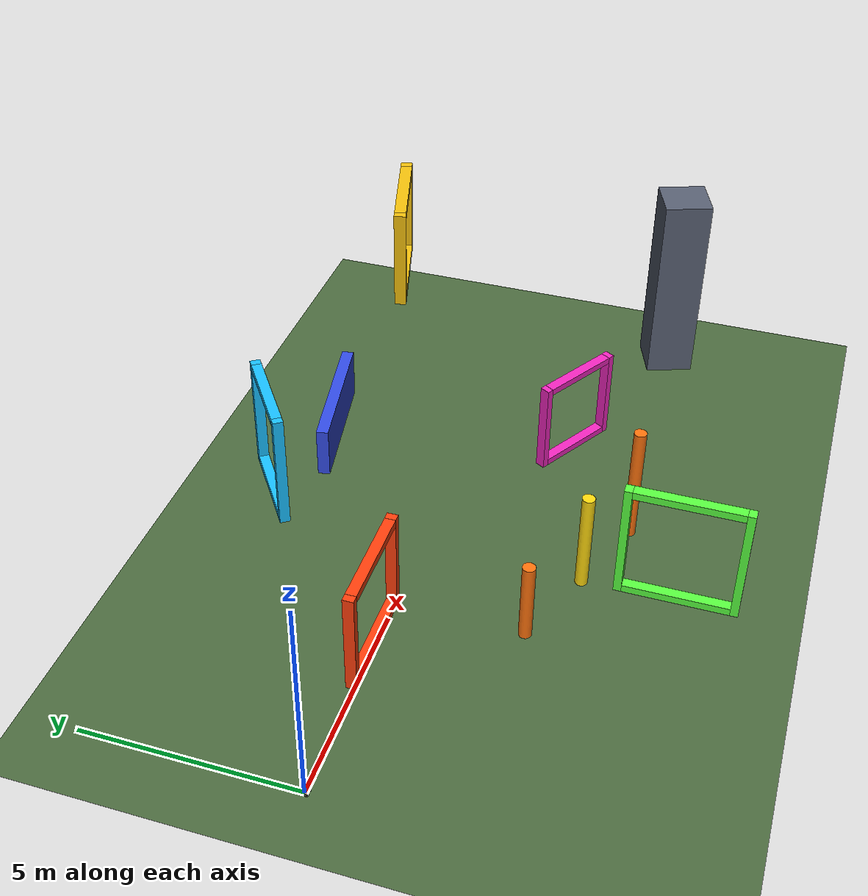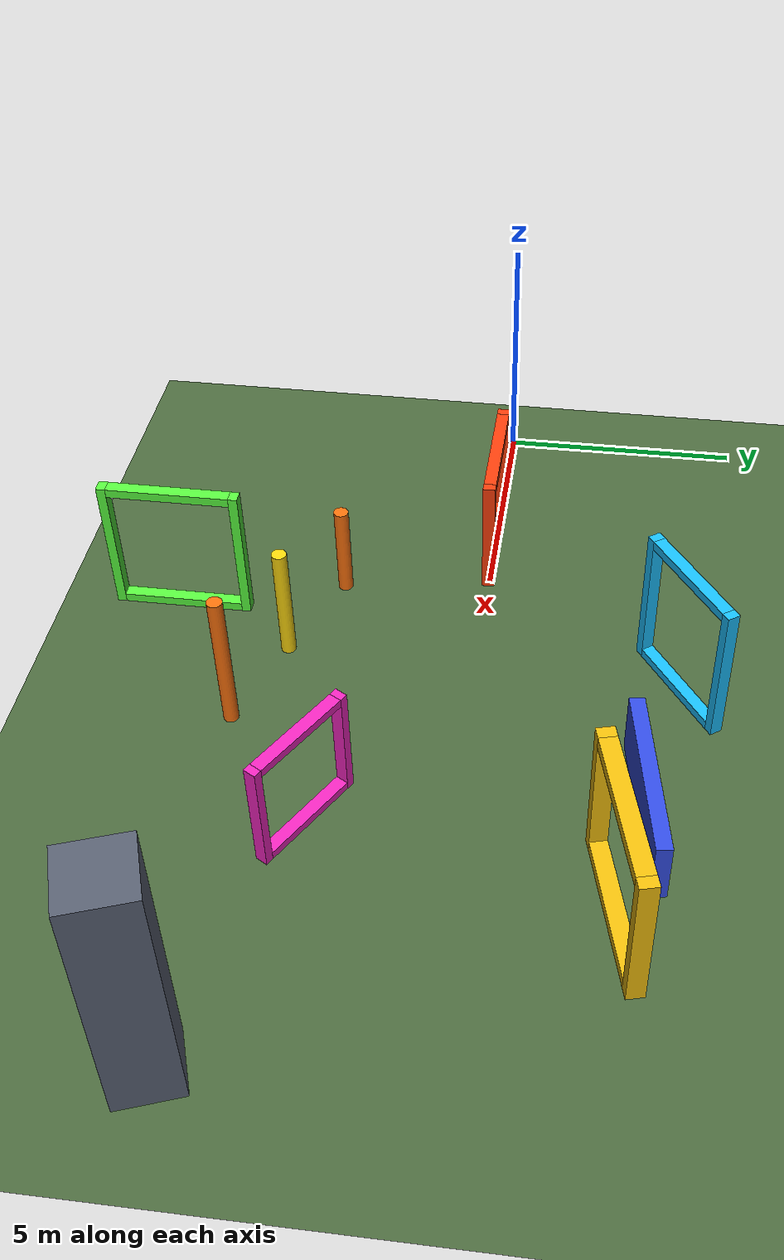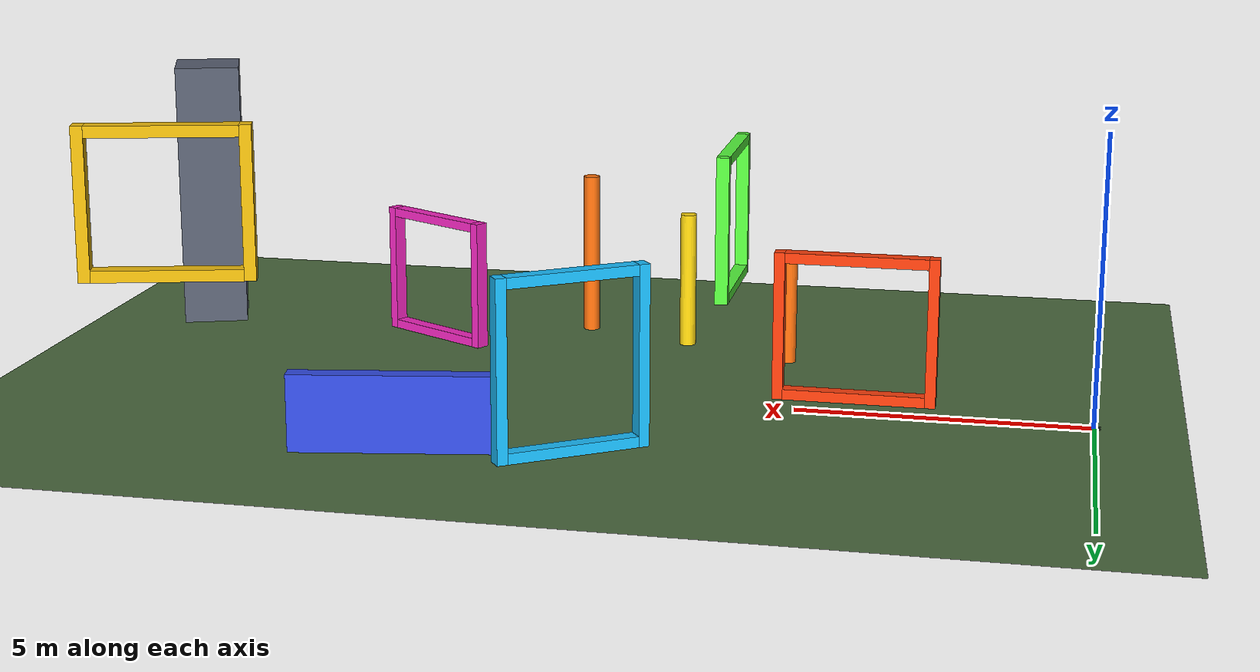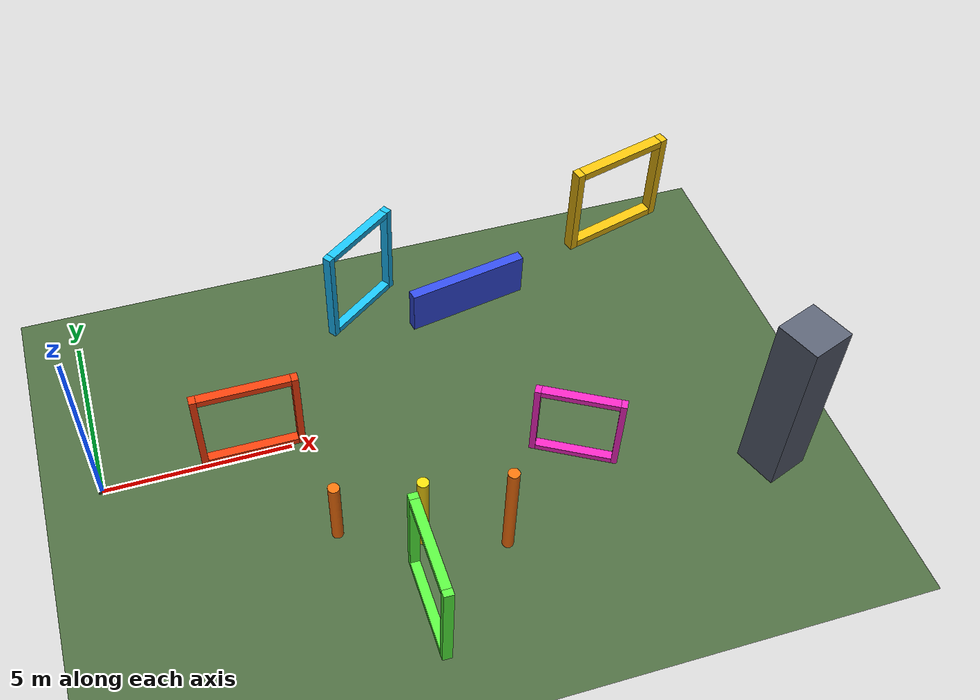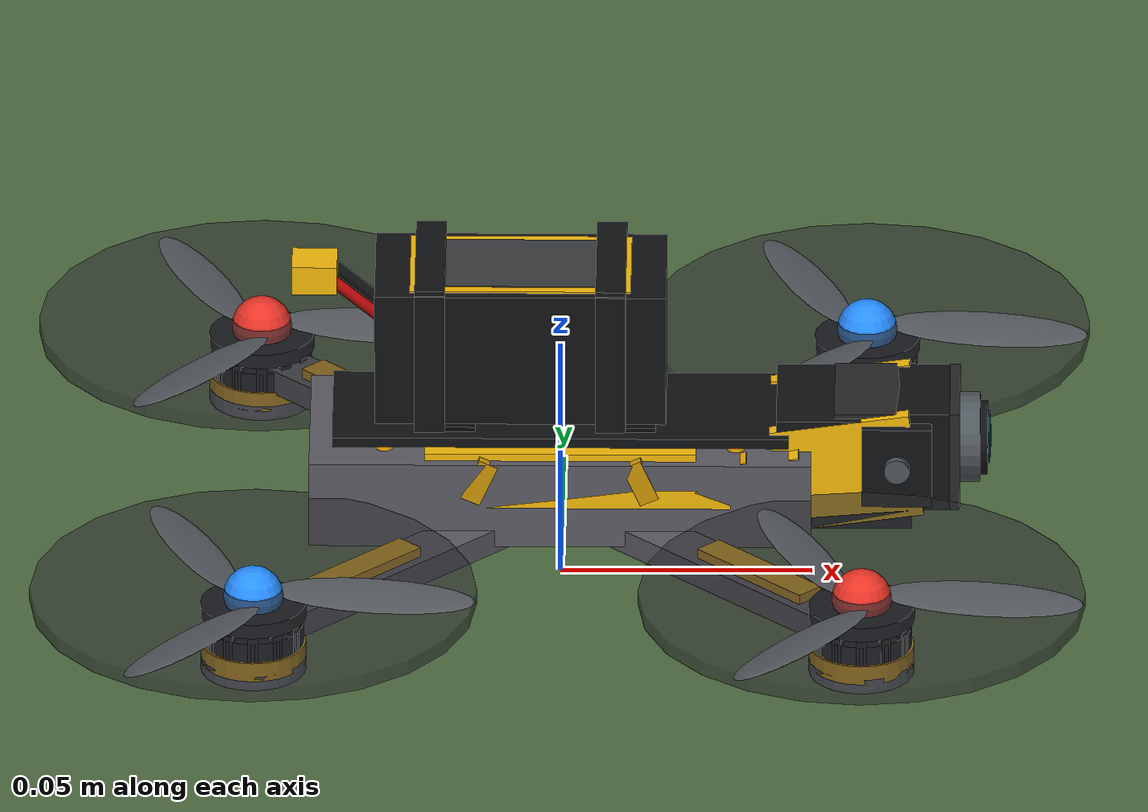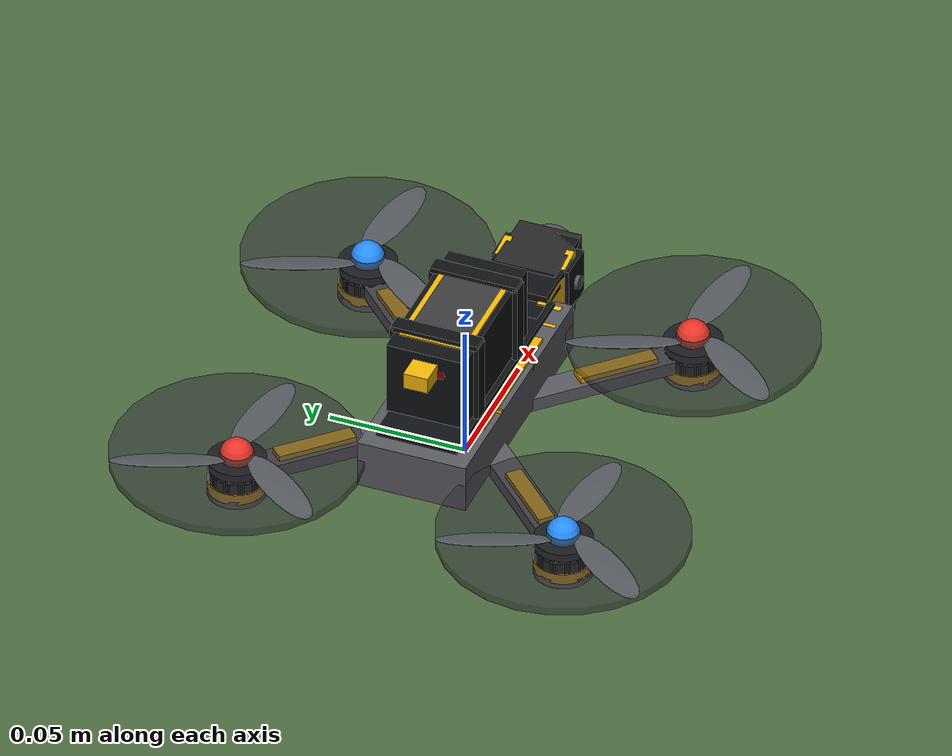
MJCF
<mujoco model="master3x-visual-demo">
  <compiler angle="degree" inertiafromgeom="true" inertiagrouprange="5 5" />
  <option timestep="0.001" density="1.204" viscosity="0.000018" integrator="RK4" />
  <visual>
    <global azimuth="135" elevation="-20" />
    <rgba haze="0.72 0.84 0.96 1" />
    <headlight ambient="0.55 0.55 0.55" diffuse="0.8 0.8 0.8" specular="0.25 0.25 0.25" />
  </visual>
  <asset>
    <texture name="fpv_sky" type="skybox" builtin="gradient" rgb1="0.62 0.78 0.95" rgb2="0.78 0.94 1" width="512" height="3072" />
  </asset>
  <worldbody>
    <light name="key-light" pos="0 -5 12" dir="0 0.25 -1" diffuse="0.95 0.95 0.92" ambient="0.25 0.25 0.25" directional="true" castshadow="true" />
    <light name="fill-light" pos="8 4 7" dir="-0.7 -0.3 -1" diffuse="0.55 0.65 0.8" ambient="0.12 0.12 0.16" directional="true" castshadow="true" />
    <geom name="ground" type="plane" size="30 30 0.1" rgba="0.3 0.42 0.25 1" friction="0.8 0.02 0.001" />
    <body name="course_start-gate" pos="4 0 1.5" euler="0 0 0">
      <geom contype="1" conaffinity="1" friction="0.15 0.002 0.0001" condim="3" rgba="1 0.25 0.05 1" name="start-gate_left" type="box" pos="-1.29 0 0" size="0.09 0.125 1.28" />
      <geom contype="1" conaffinity="1" friction="0.15 0.002 0.0001" condim="3" rgba="1 0.25 0.05 1" name="start-gate_right" type="box" pos="1.29 0 0" size="0.09 0.125 1.28" />
      <geom contype="1" conaffinity="1" friction="0.15 0.002 0.0001" condim="3" rgba="1 0.25 0.05 1" name="start-gate_top" type="box" pos="0 0 1.19" size="1.2 0.125 0.09" />
      <geom contype="1" conaffinity="1" friction="0.15 0.002 0.0001" condim="3" rgba="1 0.25 0.05 1" name="start-gate_bottom" type="box" pos="0 0 -1.19" size="1.2 0.125 0.09" />
    </body>
    <body name="course_gate-left" pos="8 4 1.8" euler="0 0 35">
      <geom contype="1" conaffinity="1" friction="0.15 0.002 0.0001" condim="3" rgba="0.1 0.75 1 1" name="gate-left_left" type="box" pos="-1.19 0 0" size="0.09 0.125 1.48" />
      <geom contype="1" conaffinity="1" friction="0.15 0.002 0.0001" condim="3" rgba="0.1 0.75 1 1" name="gate-left_right" type="box" pos="1.19 0 0" size="0.09 0.125 1.48" />
      <geom contype="1" conaffinity="1" friction="0.15 0.002 0.0001" condim="3" rgba="0.1 0.75 1 1" name="gate-left_top" type="box" pos="0 0 1.39" size="1.1 0.125 0.09" />
      <geom contype="1" conaffinity="1" friction="0.15 0.002 0.0001" condim="3" rgba="0.1 0.75 1 1" name="gate-left_bottom" type="box" pos="0 0 -1.39" size="1.1 0.125 0.09" />
    </body>
    <body name="course_gate-right" pos="12 -2.5 1.4" euler="0 0 -30">
      <geom contype="1" conaffinity="1" friction="0.15 0.002 0.0001" condim="3" rgba="0.95 0.15 0.75 1" name="gate-right_left" type="box" pos="-1.08 0 0" size="0.08 0.125 1.16" />
      <geom contype="1" conaffinity="1" friction="0.15 0.002 0.0001" condim="3" rgba="0.95 0.15 0.75 1" name="gate-right_right" type="box" pos="1.08 0 0" size="0.08 0.125 1.16" />
      <geom contype="1" conaffinity="1" friction="0.15 0.002 0.0001" condim="3" rgba="0.95 0.15 0.75 1" name="gate-right_top" type="box" pos="0 0 1.08" size="1 0.125 0.08" />
      <geom contype="1" conaffinity="1" friction="0.15 0.002 0.0001" condim="3" rgba="0.95 0.15 0.75 1" name="gate-right_bottom" type="box" pos="0 0 -1.08" size="1 0.125 0.08" />
    </body>
    <body name="course_high-gate" pos="15 3 3.8" euler="0 0 15">
      <geom contype="1" conaffinity="1" friction="0.15 0.002 0.0001" condim="3" rgba="0.95 0.75 0.05 1" name="high-gate_left" type="box" pos="-1.35 0 0" size="0.1 0.15 1.3" />
      <geom contype="1" conaffinity="1" friction="0.15 0.002 0.0001" condim="3" rgba="0.95 0.75 0.05 1" name="high-gate_right" type="box" pos="1.35 0 0" size="0.1 0.15 1.3" />
      <geom contype="1" conaffinity="1" friction="0.15 0.002 0.0001" condim="3" rgba="0.95 0.75 0.05 1" name="high-gate_top" type="box" pos="0 0 1.2" size="1.25 0.15 0.1" />
      <geom contype="1" conaffinity="1" friction="0.15 0.002 0.0001" condim="3" rgba="0.95 0.75 0.05 1" name="high-gate_bottom" type="box" pos="0 0 -1.2" size="1.25 0.15 0.1" />
    </body>
    <body name="course_return-gate" pos="7 -6 2" euler="0 0 90">
      <geom contype="1" conaffinity="1" friction="0.15 0.002 0.0001" condim="3" rgba="0.35 1 0.25 1" name="return-gate_left" type="box" pos="-1.29 0 0" size="0.09 0.125 1.43" />
      <geom contype="1" conaffinity="1" friction="0.15 0.002 0.0001" condim="3" rgba="0.35 1 0.25 1" name="return-gate_right" type="box" pos="1.29 0 0" size="0.09 0.125 1.43" />
      <geom contype="1" conaffinity="1" friction="0.15 0.002 0.0001" condim="3" rgba="0.35 1 0.25 1" name="return-gate_top" type="box" pos="0 0 1.34" size="1.2 0.125 0.09" />
      <geom contype="1" conaffinity="1" friction="0.15 0.002 0.0001" condim="3" rgba="0.35 1 0.25 1" name="return-gate_bottom" type="box" pos="0 0 -1.34" size="1.2 0.125 0.09" />
    </body>
    <body name="course_slalom-1" pos="5.5 -3 1" euler="0 0 0">
      <geom contype="1" conaffinity="1" friction="0.15 0.002 0.0001" condim="3" rgba="1 0.45 0.05 1" name="slalom-1_geom" type="cylinder" size="0.15 1" />
    </body>
    <body name="course_slalom-2" pos="7.5 -3.8 1.25" euler="0 0 0">
      <geom contype="1" conaffinity="1" friction="0.15 0.002 0.0001" condim="3" rgba="1 0.85 0.05 1" name="slalom-2_geom" type="cylinder" size="0.15 1.25" />
    </body>
    <body name="course_slalom-3" pos="9.5 -4.5 1.5" euler="0 0 0">
      <geom contype="1" conaffinity="1" friction="0.15 0.002 0.0001" condim="3" rgba="1 0.45 0.05 1" name="slalom-3_geom" type="cylinder" size="0.15 1.5" />
    </body>
    <body name="course_low-bar" pos="11 3.5 0.65" euler="0 0 10">
      <geom contype="1" conaffinity="1" friction="0.15 0.002 0.0001" condim="3" rgba="0.2 0.3 0.9 1" name="low-bar_geom" type="box" size="1.75 0.15 0.65" />
    </body>
    <body name="course_tower" pos="17 -4 2.5" euler="0 0 20">
      <geom contype="1" conaffinity="1" friction="0.15 0.002 0.0001" condim="3" rgba="0.35 0.38 0.45 1" name="tower_geom" type="box" size="0.6 0.6 2.5" />
    </body>
    <body name="drone_base" pos="0 0 0.016">
      <freejoint name="drone_freejoint" />
      <geom name="frame_bottom_plate" type="box" pos="0 0 0" quat="1 0 0 0" size="0.049 0.018 0.001" rgba="0.055 0.065 0.075 1" mass="0" group="1" contype="0" conaffinity="0" />
      <geom name="frame_middle_plate" type="box" pos="0 0 0.0065" quat="1 0 0 0" size="0.043 0.017 0.001" rgba="0.06 0.07 0.08 1" mass="0" group="1" contype="0" conaffinity="0" />
      <geom name="frame_top_plate" type="box" pos="0 0 0.0195" quat="1 0 0 0" size="0.0455 0.015 0.001" rgba="0.055 0.065 0.075 1" mass="0" group="1" contype="0" conaffinity="0" />
      <geom name="frame_top_nose" type="box" pos="0.045 0 0.0195" quat="1 0 0 0" size="0.011 0.013 0.001" rgba="0.055 0.065 0.075 1" mass="0" group="1" contype="0" conaffinity="0" />
      <geom name="frame_battery_pad_front" type="box" pos="0.013 0 0.021" quat="1 0 0 0" size="0.006 0.012 0.0005" rgba="0.025 0.028 0.032 1" mass="0" group="1" contype="0" conaffinity="0" />
      <geom name="frame_battery_pad_rear" type="box" pos="-0.023 0 0.021" quat="1 0 0 0" size="0.006 0.012 0.0005" rgba="0.025 0.028 0.032 1" mass="0" group="1" contype="0" conaffinity="0" />
      <geom name="frame_front_support_bottom" type="box" pos="0.055 0 0.002" quat="1 0 0 0" size="0.015 0.013 0.002" rgba="0.055 0.065 0.075 1" mass="0" group="1" contype="0" conaffinity="0" />
      <geom name="frame_front_support_right" type="box" pos="0.057 -0.0115 0.012" quat="0.99756405026 0 -0.0697564737441 0" size="0.014 0.0015 0.011" rgba="0.95 0.72 0.03 1" mass="0" group="1" contype="0" conaffinity="0" />
      <geom name="frame_front_support_left" type="box" pos="0.057 0.0115 0.012" quat="0.99756405026 0 -0.0697564737441 0" size="0.014 0.0015 0.011" rgba="0.95 0.72 0.03 1" mass="0" group="1" contype="0" conaffinity="0" />
      <geom name="frame_front_support_top" type="box" pos="0.055 0 0.022" quat="1 0 0 0" size="0.012 0.013 0.0015" rgba="0.055 0.065 0.075 1" mass="0" group="1" contype="0" conaffinity="0" />
      <geom name="frame_side_plate_right" type="box" pos="0 -0.017 0.0095" quat="1 0 0 0" size="0.034 0.003 0.002" rgba="0.95 0.72 0.03 1" mass="0" group="1" contype="0" conaffinity="0" />
      <geom name="frame_side_plate_left" type="box" pos="0 0.017 0.0095" quat="1 0 0 0" size="0.034 0.003 0.002" rgba="0.95 0.72 0.03 1" mass="0" group="1" contype="0" conaffinity="0" />
      <geom name="frame_side_plate_mid_right" type="box" pos="0 -0.0165 0.013" quat="1 0 0 0" size="0.031 0.0025 0.0015" rgba="0.97 0.73 0.035 1" mass="0" group="1" contype="0" conaffinity="0" />
      <geom name="frame_side_plate_mid_left" type="box" pos="0 0.0165 0.013" quat="1 0 0 0" size="0.031 0.0025 0.0015" rgba="0.97 0.73 0.035 1" mass="0" group="1" contype="0" conaffinity="0" />
      <geom name="frame_side_plate_upper_right" type="box" pos="0 -0.016 0.0165" quat="1 0 0 0" size="0.027 0.002 0.002" rgba="0.95 0.72 0.03 1" mass="0" group="1" contype="0" conaffinity="0" />
      <geom name="frame_side_plate_upper_left" type="box" pos="0 0.016 0.0165" quat="1 0 0 0" size="0.027 0.002 0.002" rgba="0.95 0.72 0.03 1" mass="0" group="1" contype="0" conaffinity="0" />
      <geom name="frame_side_front_ramp_right" type="box" pos="0.03 -0.0165 0.013" quat="0.987688340595 0 -0.15643446504 0" size="0.008 0.0025 0.002" rgba="0.92 0.66 0.02 1" mass="0" group="1" contype="0" conaffinity="0" />
      <geom name="frame_side_front_ramp_left" type="box" pos="0.03 0.0165 0.013" quat="0.987688340595 0 -0.15643446504 0" size="0.008 0.0025 0.002" rgba="0.92 0.66 0.02 1" mass="0" group="1" contype="0" conaffinity="0" />
      <geom name="frame_side_rear_ramp_right" type="box" pos="-0.03 -0.0165 0.0125" quat="0.987688340595 0 0.15643446504 0" size="0.008 0.0025 0.002" rgba="0.92 0.66 0.02 1" mass="0" group="1" contype="0" conaffinity="0" />
      <geom name="frame_side_rear_ramp_left" type="box" pos="-0.03 0.0165 0.0125" quat="0.987688340595 0 0.15643446504 0" size="0.008 0.0025 0.002" rgba="0.92 0.66 0.02 1" mass="0" group="1" contype="0" conaffinity="0" />
      <geom name="frame_side_nose_bridge_right" type="box" pos="0.041 -0.0145 0.014" quat="0.994521895368 0 -0.104528463268 0" size="0.007 0.0025 0.002" rgba="0.95 0.72 0.03 1" mass="0" group="1" contype="0" conaffinity="0" />
      <geom name="frame_side_nose_bridge_left" type="box" pos="0.041 0.0145 0.014" quat="0.994521895368 0 -0.104528463268 0" size="0.007 0.0025 0.002" rgba="0.95 0.72 0.03 1" mass="0" group="1" contype="0" conaffinity="0" />
      <geom name="frame_side_brace_right_front" type="box" pos="0.016 -0.0185 0.013" quat="0.978147600734 0 -0.207911690818 0" size="0.002 0.0015 0.0045" rgba="0.8 0.58 0.02 1" mass="0" group="1" contype="0" conaffinity="0" />
      <geom name="frame_side_brace_right_rear" type="box" pos="-0.016 -0.0185 0.013" quat="0.978147600734 0 0.207911690818 0" size="0.002 0.0015 0.0045" rgba="0.8 0.58 0.02 1" mass="0" group="1" contype="0" conaffinity="0" />
      <geom name="frame_side_brace_left_front" type="box" pos="0.016 0.0185 0.013" quat="0.978147600734 0 -0.207911690818 0" size="0.002 0.0015 0.0045" rgba="0.8 0.58 0.02 1" mass="0" group="1" contype="0" conaffinity="0" />
      <geom name="frame_side_brace_left_rear" type="box" pos="-0.016 0.0185 0.013" quat="0.978147600734 0 0.207911690818 0" size="0.002 0.0015 0.0045" rgba="0.8 0.58 0.02 1" mass="0" group="1" contype="0" conaffinity="0" />
      <geom name="frame_standoff_rear_right" type="cylinder" pos="-0.035 -0.012 0.013" quat="1 0 0 0" size="0.0018 0.0055" rgba="0.95 0.67 0.025 1" mass="0" group="1" contype="0" conaffinity="0" />
      <geom name="frame_standoff_rear_left" type="cylinder" pos="-0.035 0.012 0.013" quat="1 0 0 0" size="0.0018 0.0055" rgba="0.95 0.67 0.025 1" mass="0" group="1" contype="0" conaffinity="0" />
      <geom name="frame_standoff_front_right" type="cylinder" pos="0.035 -0.012 0.013" quat="1 0 0 0" size="0.0018 0.0055" rgba="0.95 0.67 0.025 1" mass="0" group="1" contype="0" conaffinity="0" />
      <geom name="frame_standoff_front_left" type="cylinder" pos="0.035 0.012 0.013" quat="1 0 0 0" size="0.0018 0.0055" rgba="0.95 0.67 0.025 1" mass="0" group="1" contype="0" conaffinity="0" />
      <geom name="frame_arm_front_right" type="box" pos="0.037 -0.037 0" quat="0.923879532511 0 0 -0.382683432365" size="0.0332 0.0045 0.002" rgba="0.08 0.09 0.1 1" mass="0" group="1" contype="0" conaffinity="0" />
      <geom name="frame_arm_front_left" type="box" pos="0.037 0.037 0" quat="0.923879532511 0 0 0.382683432365" size="0.0332 0.0045 0.002" rgba="0.08 0.09 0.1 1" mass="0" group="1" contype="0" conaffinity="0" />
      <geom name="frame_arm_rear_left" type="box" pos="-0.037 0.037 0" quat="0.923879532511 0 0 -0.382683432365" size="0.0332 0.0045 0.002" rgba="0.08 0.09 0.1 1" mass="0" group="1" contype="0" conaffinity="0" />
      <geom name="frame_arm_rear_right" type="box" pos="-0.037 -0.037 0" quat="0.923879532511 0 0 0.382683432365" size="0.0332 0.0045 0.002" rgba="0.08 0.09 0.1 1" mass="0" group="1" contype="0" conaffinity="0" />
      <geom name="frame_foot_rear_right" type="cylinder" pos="-0.06046 -0.06046 -0.004" quat="1 0 0 0" size="0.0105 0.002" rgba="0.95 0.67 0.025 1" mass="0" group="1" contype="0" conaffinity="0" />
      <geom name="frame_motor_pad_rear_right" type="cylinder" pos="-0.06046 -0.06046 0" quat="1 0 0 0" size="0.01 0.002" rgba="0.055 0.065 0.075 1" mass="0" group="1" contype="0" conaffinity="0" />
      <geom name="frame_wire_guard_rear_right" type="box" pos="-0.0399 -0.0399 0.003" quat="0.923879532511 0 0 0.382683432365" size="0.0145 0.003 0.0015" rgba="0.95 0.67 0.025 1" mass="0" group="1" contype="0" conaffinity="0" />
      <geom name="frame_foot_rear_left" type="cylinder" pos="-0.06046 0.06046 -0.004" quat="1 0 0 0" size="0.0105 0.002" rgba="0.95 0.67 0.025 1" mass="0" group="1" contype="0" conaffinity="0" />
      <geom name="frame_motor_pad_rear_left" type="cylinder" pos="-0.06046 0.06046 0" quat="1 0 0 0" size="0.01 0.002" rgba="0.055 0.065 0.075 1" mass="0" group="1" contype="0" conaffinity="0" />
      <geom name="frame_wire_guard_rear_left" type="box" pos="-0.0399 0.0399 0.003" quat="0.923879532511 0 0 -0.382683432365" size="0.0145 0.003 0.0015" rgba="0.95 0.67 0.025 1" mass="0" group="1" contype="0" conaffinity="0" />
      <geom name="frame_foot_front_right" type="cylinder" pos="0.06046 -0.06046 -0.004" quat="1 0 0 0" size="0.0105 0.002" rgba="0.95 0.67 0.025 1" mass="0" group="1" contype="0" conaffinity="0" />
      <geom name="frame_motor_pad_front_right" type="cylinder" pos="0.06046 -0.06046 0" quat="1 0 0 0" size="0.01 0.002" rgba="0.055 0.065 0.075 1" mass="0" group="1" contype="0" conaffinity="0" />
      <geom name="frame_wire_guard_front_right" type="box" pos="0.0399 -0.0399 0.003" quat="0.923879532511 0 0 -0.382683432365" size="0.0145 0.003 0.0015" rgba="0.95 0.67 0.025 1" mass="0" group="1" contype="0" conaffinity="0" />
      <geom name="frame_foot_front_left" type="cylinder" pos="0.06046 0.06046 -0.004" quat="1 0 0 0" size="0.0105 0.002" rgba="0.95 0.67 0.025 1" mass="0" group="1" contype="0" conaffinity="0" />
      <geom name="frame_motor_pad_front_left" type="cylinder" pos="0.06046 0.06046 0" quat="1 0 0 0" size="0.01 0.002" rgba="0.055 0.065 0.075 1" mass="0" group="1" contype="0" conaffinity="0" />
      <geom name="frame_wire_guard_front_left" type="box" pos="0.0399 0.0399 0.003" quat="0.923879532511 0 0 0.382683432365" size="0.0145 0.003 0.0015" rgba="0.95 0.67 0.025 1" mass="0" group="1" contype="0" conaffinity="0" />
      <geom name="frame_core_contact" type="box" pos="0 0 0.008" quat="1 0 0 0" size="0.05 0.02 0.009" rgba="0.35 0.35 0.38 1" mass="0" group="2" contype="1" conaffinity="1" friction="0.15 0.002 0.0001" />
      <geom name="frame_arm_front_right_contact" type="box" pos="0.037 -0.037 0" quat="0.923879532511 0 0 -0.382683432365" size="0.0332 0.005 0.0025" rgba="0.35 0.35 0.38 1" mass="0" group="2" contype="1" conaffinity="1" friction="0.15 0.002 0.0001" />
      <geom name="frame_arm_front_left_contact" type="box" pos="0.037 0.037 0" quat="0.923879532511 0 0 0.382683432365" size="0.0332 0.005 0.0025" rgba="0.35 0.35 0.38 1" mass="0" group="2" contype="1" conaffinity="1" friction="0.15 0.002 0.0001" />
      <geom name="frame_arm_rear_left_contact" type="box" pos="-0.037 0.037 0" quat="0.923879532511 0 0 -0.382683432365" size="0.0332 0.005 0.0025" rgba="0.35 0.35 0.38 1" mass="0" group="2" contype="1" conaffinity="1" friction="0.15 0.002 0.0001" />
      <geom name="frame_arm_rear_right_contact" type="box" pos="-0.037 -0.037 0" quat="0.923879532511 0 0 0.382683432365" size="0.0332 0.005 0.0025" rgba="0.35 0.35 0.38 1" mass="0" group="2" contype="1" conaffinity="1" friction="0.15 0.002 0.0001" />
      <geom name="frame_foot_front_right_contact" type="cylinder" pos="0.06046 -0.06046 -0.004" quat="1 0 0 0" size="0.0105 0.002" rgba="0.35 0.35 0.38 1" mass="0" group="2" contype="1" conaffinity="1" friction="0.15 0.002 0.0001" />
      <geom name="frame_foot_front_left_contact" type="cylinder" pos="0.06046 0.06046 -0.004" quat="1 0 0 0" size="0.0105 0.002" rgba="0.35 0.35 0.38 1" mass="0" group="2" contype="1" conaffinity="1" friction="0.15 0.002 0.0001" />
      <geom name="frame_foot_rear_left_contact" type="cylinder" pos="-0.06046 0.06046 -0.004" quat="1 0 0 0" size="0.0105 0.002" rgba="0.35 0.35 0.38 1" mass="0" group="2" contype="1" conaffinity="1" friction="0.15 0.002 0.0001" />
      <geom name="frame_foot_rear_right_contact" type="cylinder" pos="-0.06046 -0.06046 -0.004" quat="1 0 0 0" size="0.0105 0.002" rgba="0.35 0.35 0.38 1" mass="0" group="2" contype="1" conaffinity="1" friction="0.15 0.002 0.0001" />
      <geom name="frame_mass_proxy" type="box" pos="0 0 0" quat="1 0 0 0" size="0.06 0.06 0.009" rgba="0 0 0 0" density="335.648148148" group="5" contype="0" conaffinity="0" />
      <geom name="motor_prop1_base_flange" type="cylinder" pos="0.06046 -0.06046 -0.0065" quat="1 0 0 0" size="0.0105 0.0015" rgba="0.38 0.4 0.43 1" mass="0" group="1" contype="0" conaffinity="0" />
      <geom name="motor_prop1_stator" type="cylinder" pos="0.06046 -0.06046 0" quat="1 0 0 0" size="0.0075 0.0035" rgba="0.52 0.24 0.075 1" mass="0" group="1" contype="0" conaffinity="0" />
      <geom name="motor_prop1_bell_rim" type="cylinder" pos="0.06046 -0.06046 0.005" quat="1 0 0 0" size="0.0105 0.0015" rgba="0.055 0.065 0.075 1" mass="0" group="1" contype="0" conaffinity="0" />
      <geom name="motor_prop1_shaft" type="cylinder" pos="0.06046 -0.06046 0.008" quat="1 0 0 0" size="0.00075 0.002" rgba="0.38 0.4 0.43 1" mass="0" group="1" contype="0" conaffinity="0" />
      <geom name="motor_prop1_bell_rib_0" type="box" pos="0.06976 -0.06046 0" quat="1 0 0 0" size="0.00065 0.00105 0.0045" rgba="0.055 0.065 0.075 1" mass="0" group="1" contype="0" conaffinity="0" />
      <geom name="motor_prop1_bell_rib_1" type="box" pos="0.068514 -0.05581 0" quat="0.965925826289 0 0 0.258819045103" size="0.00065 0.00105 0.0045" rgba="0.055 0.065 0.075 1" mass="0" group="1" contype="0" conaffinity="0" />
      <geom name="motor_prop1_bell_rib_2" type="box" pos="0.06511 -0.052406 0" quat="0.866025403784 0 0 0.5" size="0.00065 0.00105 0.0045" rgba="0.055 0.065 0.075 1" mass="0" group="1" contype="0" conaffinity="0" />
      <geom name="motor_prop1_bell_rib_3" type="box" pos="0.06046 -0.05116 0" quat="0.707106781187 0 0 0.707106781187" size="0.00065 0.00105 0.0045" rgba="0.055 0.065 0.075 1" mass="0" group="1" contype="0" conaffinity="0" />
      <geom name="motor_prop1_bell_rib_4" type="box" pos="0.05581 -0.052406 0" quat="0.5 0 0 0.866025403784" size="0.00065 0.00105 0.0045" rgba="0.055 0.065 0.075 1" mass="0" group="1" contype="0" conaffinity="0" />
      <geom name="motor_prop1_bell_rib_5" type="box" pos="0.052406 -0.05581 0" quat="0.258819045103 0 0 0.965925826289" size="0.00065 0.00105 0.0045" rgba="0.055 0.065 0.075 1" mass="0" group="1" contype="0" conaffinity="0" />
      <geom name="motor_prop1_bell_rib_6" type="box" pos="0.05116 -0.06046 0" quat="6.12323399574e-17 0 0 1" size="0.00065 0.00105 0.0045" rgba="0.055 0.065 0.075 1" mass="0" group="1" contype="0" conaffinity="0" />
      <geom name="motor_prop1_bell_rib_7" type="box" pos="0.052406 -0.06511 0" quat="-0.258819045103 0 0 0.965925826289" size="0.00065 0.00105 0.0045" rgba="0.055 0.065 0.075 1" mass="0" group="1" contype="0" conaffinity="0" />
      <geom name="motor_prop1_bell_rib_8" type="box" pos="0.05581 -0.068514 0" quat="-0.5 0 0 0.866025403784" size="0.00065 0.00105 0.0045" rgba="0.055 0.065 0.075 1" mass="0" group="1" contype="0" conaffinity="0" />
      <geom name="motor_prop1_bell_rib_9" type="box" pos="0.06046 -0.06976 0" quat="-0.707106781187 0 0 0.707106781187" size="0.00065 0.00105 0.0045" rgba="0.055 0.065 0.075 1" mass="0" group="1" contype="0" conaffinity="0" />
      <geom name="motor_prop1_bell_rib_10" type="box" pos="0.06511 -0.068514 0" quat="-0.866025403784 0 0 0.5" size="0.00065 0.00105 0.0045" rgba="0.055 0.065 0.075 1" mass="0" group="1" contype="0" conaffinity="0" />
      <geom name="motor_prop1_bell_rib_11" type="box" pos="0.068514 -0.06511 0" quat="-0.965925826289 0 0 0.258819045103" size="0.00065 0.00105 0.0045" rgba="0.055 0.065 0.075 1" mass="0" group="1" contype="0" conaffinity="0" />
      <geom name="motor_prop1_mass_proxy" type="cylinder" pos="0.06046 -0.06046 0" quat="1 0 0 0" size="0.011 0.008" rgba="0 0 0 0" density="2499.12720558" group="5" contype="0" conaffinity="0" />
      <geom name="propeller_prop1_hub" type="cylinder" pos="0.06046 -0.06046 0.008" quat="1 0 0 0" size="0.005 0.00235" rgba="0.21 0.23 0.25 1" mass="0" group="1" contype="0" conaffinity="0" />
      <geom name="propeller_prop1_blade_1" type="ellipsoid" pos="0.08446 -0.06046 0.008" quat="0.992099290016 0.104273837185 -0.00729153700344 -0.0693743404822" size="0.02045 0.0055 0.0007" rgba="0.56 0.6 0.62 1" mass="0" group="1" contype="0" conaffinity="0" />
      <geom name="propeller_prop1_blade_2" type="ellipsoid" pos="0.04846 -0.039675 0.008" quat="0.556129586236 0.05845157487 0.0866580234503 0.824496017989" size="0.02045 0.0055 0.0007" rgba="0.56 0.6 0.62 1" mass="0" group="1" contype="0" conaffinity="0" />
      <geom name="propeller_prop1_blade_3" type="ellipsoid" pos="0.04846 -0.081245 0.008" quat="-0.435969703779 -0.0458222623147 0.0939495604538 0.893870358471" size="0.02045 0.0055 0.0007" rgba="0.56 0.6 0.62 1" mass="0" group="1" contype="0" conaffinity="0" />
      <geom name="propeller_prop1_screw_1" type="cylinder" pos="0.06346 -0.06046 0.0106" quat="1 0 0 0" size="0.001 0.00035" rgba="0.65 0.67 0.69 1" mass="0" group="1" contype="0" conaffinity="0" />
      <geom name="propeller_prop1_screw_2" type="cylinder" pos="0.05746 -0.06046 0.0106" quat="1 0 0 0" size="0.001 0.00035" rgba="0.65 0.67 0.69 1" mass="0" group="1" contype="0" conaffinity="0" />
      <geom name="propeller_prop1_mass_proxy" type="cylinder" pos="0.06046 -0.06046 0.008" quat="1 0 0 0" size="0.04445 0.0015" rgba="0 0 0 0" density="83.2371190246" group="5" contype="0" conaffinity="0" />
      <geom name="motor_prop2_base_flange" type="cylinder" pos="0.06046 0.06046 -0.0065" quat="1 0 0 0" size="0.0105 0.0015" rgba="0.38 0.4 0.43 1" mass="0" group="1" contype="0" conaffinity="0" />
      <geom name="motor_prop2_stator" type="cylinder" pos="0.06046 0.06046 0" quat="1 0 0 0" size="0.0075 0.0035" rgba="0.52 0.24 0.075 1" mass="0" group="1" contype="0" conaffinity="0" />
      <geom name="motor_prop2_bell_rim" type="cylinder" pos="0.06046 0.06046 0.005" quat="1 0 0 0" size="0.0105 0.0015" rgba="0.055 0.065 0.075 1" mass="0" group="1" contype="0" conaffinity="0" />
      <geom name="motor_prop2_shaft" type="cylinder" pos="0.06046 0.06046 0.008" quat="1 0 0 0" size="0.00075 0.002" rgba="0.38 0.4 0.43 1" mass="0" group="1" contype="0" conaffinity="0" />
      <geom name="motor_prop2_bell_rib_0" type="box" pos="0.06976 0.06046 0" quat="1 0 0 0" size="0.00065 0.00105 0.0045" rgba="0.055 0.065 0.075 1" mass="0" group="1" contype="0" conaffinity="0" />
      <geom name="motor_prop2_bell_rib_1" type="box" pos="0.068514 0.06511 0" quat="0.965925826289 0 0 0.258819045103" size="0.00065 0.00105 0.0045" rgba="0.055 0.065 0.075 1" mass="0" group="1" contype="0" conaffinity="0" />
      <geom name="motor_prop2_bell_rib_2" type="box" pos="0.06511 0.068514 0" quat="0.866025403784 0 0 0.5" size="0.00065 0.00105 0.0045" rgba="0.055 0.065 0.075 1" mass="0" group="1" contype="0" conaffinity="0" />
      <geom name="motor_prop2_bell_rib_3" type="box" pos="0.06046 0.06976 0" quat="0.707106781187 0 0 0.707106781187" size="0.00065 0.00105 0.0045" rgba="0.055 0.065 0.075 1" mass="0" group="1" contype="0" conaffinity="0" />
      <geom name="motor_prop2_bell_rib_4" type="box" pos="0.05581 0.068514 0" quat="0.5 0 0 0.866025403784" size="0.00065 0.00105 0.0045" rgba="0.055 0.065 0.075 1" mass="0" group="1" contype="0" conaffinity="0" />
      <geom name="motor_prop2_bell_rib_5" type="box" pos="0.052406 0.06511 0" quat="0.258819045103 0 0 0.965925826289" size="0.00065 0.00105 0.0045" rgba="0.055 0.065 0.075 1" mass="0" group="1" contype="0" conaffinity="0" />
      <geom name="motor_prop2_bell_rib_6" type="box" pos="0.05116 0.06046 0" quat="6.12323399574e-17 0 0 1" size="0.00065 0.00105 0.0045" rgba="0.055 0.065 0.075 1" mass="0" group="1" contype="0" conaffinity="0" />
      <geom name="motor_prop2_bell_rib_7" type="box" pos="0.052406 0.05581 0" quat="-0.258819045103 0 0 0.965925826289" size="0.00065 0.00105 0.0045" rgba="0.055 0.065 0.075 1" mass="0" group="1" contype="0" conaffinity="0" />
      <geom name="motor_prop2_bell_rib_8" type="box" pos="0.05581 0.052406 0" quat="-0.5 0 0 0.866025403784" size="0.00065 0.00105 0.0045" rgba="0.055 0.065 0.075 1" mass="0" group="1" contype="0" conaffinity="0" />
      <geom name="motor_prop2_bell_rib_9" type="box" pos="0.06046 0.05116 0" quat="-0.707106781187 0 0 0.707106781187" size="0.00065 0.00105 0.0045" rgba="0.055 0.065 0.075 1" mass="0" group="1" contype="0" conaffinity="0" />
      <geom name="motor_prop2_bell_rib_10" type="box" pos="0.06511 0.052406 0" quat="-0.866025403784 0 0 0.5" size="0.00065 0.00105 0.0045" rgba="0.055 0.065 0.075 1" mass="0" group="1" contype="0" conaffinity="0" />
      <geom name="motor_prop2_bell_rib_11" type="box" pos="0.068514 0.05581 0" quat="-0.965925826289 0 0 0.258819045103" size="0.00065 0.00105 0.0045" rgba="0.055 0.065 0.075 1" mass="0" group="1" contype="0" conaffinity="0" />
      <geom name="motor_prop2_mass_proxy" type="cylinder" pos="0.06046 0.06046 0" quat="1 0 0 0" size="0.011 0.008" rgba="0 0 0 0" density="2499.12720558" group="5" contype="0" conaffinity="0" />
      <geom name="propeller_prop2_hub" type="cylinder" pos="0.06046 0.06046 0.008" quat="1 0 0 0" size="0.005 0.00235" rgba="0.21 0.23 0.25 1" mass="0" group="1" contype="0" conaffinity="0" />
      <geom name="propeller_prop2_blade_1" type="ellipsoid" pos="0.08446 0.06046 0.008" quat="0.992099290016 0.104273837185 -0.00729153700344 -0.0693743404822" size="0.02045 0.0055 0.0007" rgba="0.56 0.6 0.62 1" mass="0" group="1" contype="0" conaffinity="0" />
      <geom name="propeller_prop2_blade_2" type="ellipsoid" pos="0.04846 0.081245 0.008" quat="0.556129586236 0.05845157487 0.0866580234503 0.824496017989" size="0.02045 0.0055 0.0007" rgba="0.56 0.6 0.62 1" mass="0" group="1" contype="0" conaffinity="0" />
      <geom name="propeller_prop2_blade_3" type="ellipsoid" pos="0.04846 0.039675 0.008" quat="-0.435969703779 -0.0458222623147 0.0939495604538 0.893870358471" size="0.02045 0.0055 0.0007" rgba="0.56 0.6 0.62 1" mass="0" group="1" contype="0" conaffinity="0" />
      <geom name="propeller_prop2_screw_1" type="cylinder" pos="0.06346 0.06046 0.0106" quat="1 0 0 0" size="0.001 0.00035" rgba="0.65 0.67 0.69 1" mass="0" group="1" contype="0" conaffinity="0" />
      <geom name="propeller_prop2_screw_2" type="cylinder" pos="0.05746 0.06046 0.0106" quat="1 0 0 0" size="0.001 0.00035" rgba="0.65 0.67 0.69 1" mass="0" group="1" contype="0" conaffinity="0" />
      <geom name="propeller_prop2_mass_proxy" type="cylinder" pos="0.06046 0.06046 0.008" quat="1 0 0 0" size="0.04445 0.0015" rgba="0 0 0 0" density="83.2371190246" group="5" contype="0" conaffinity="0" />
      <geom name="motor_prop3_base_flange" type="cylinder" pos="-0.06046 0.06046 -0.0065" quat="1 0 0 0" size="0.0105 0.0015" rgba="0.38 0.4 0.43 1" mass="0" group="1" contype="0" conaffinity="0" />
      <geom name="motor_prop3_stator" type="cylinder" pos="-0.06046 0.06046 0" quat="1 0 0 0" size="0.0075 0.0035" rgba="0.52 0.24 0.075 1" mass="0" group="1" contype="0" conaffinity="0" />
      <geom name="motor_prop3_bell_rim" type="cylinder" pos="-0.06046 0.06046 0.005" quat="1 0 0 0" size="0.0105 0.0015" rgba="0.055 0.065 0.075 1" mass="0" group="1" contype="0" conaffinity="0" />
      <geom name="motor_prop3_shaft" type="cylinder" pos="-0.06046 0.06046 0.008" quat="1 0 0 0" size="0.00075 0.002" rgba="0.38 0.4 0.43 1" mass="0" group="1" contype="0" conaffinity="0" />
      <geom name="motor_prop3_bell_rib_0" type="box" pos="-0.05116 0.06046 0" quat="1 0 0 0" size="0.00065 0.00105 0.0045" rgba="0.055 0.065 0.075 1" mass="0" group="1" contype="0" conaffinity="0" />
      <geom name="motor_prop3_bell_rib_1" type="box" pos="-0.052406 0.06511 0" quat="0.965925826289 0 0 0.258819045103" size="0.00065 0.00105 0.0045" rgba="0.055 0.065 0.075 1" mass="0" group="1" contype="0" conaffinity="0" />
      <geom name="motor_prop3_bell_rib_2" type="box" pos="-0.05581 0.068514 0" quat="0.866025403784 0 0 0.5" size="0.00065 0.00105 0.0045" rgba="0.055 0.065 0.075 1" mass="0" group="1" contype="0" conaffinity="0" />
      <geom name="motor_prop3_bell_rib_3" type="box" pos="-0.06046 0.06976 0" quat="0.707106781187 0 0 0.707106781187" size="0.00065 0.00105 0.0045" rgba="0.055 0.065 0.075 1" mass="0" group="1" contype="0" conaffinity="0" />
      <geom name="motor_prop3_bell_rib_4" type="box" pos="-0.06511 0.068514 0" quat="0.5 0 0 0.866025403784" size="0.00065 0.00105 0.0045" rgba="0.055 0.065 0.075 1" mass="0" group="1" contype="0" conaffinity="0" />
      <geom name="motor_prop3_bell_rib_5" type="box" pos="-0.068514 0.06511 0" quat="0.258819045103 0 0 0.965925826289" size="0.00065 0.00105 0.0045" rgba="0.055 0.065 0.075 1" mass="0" group="1" contype="0" conaffinity="0" />
      <geom name="motor_prop3_bell_rib_6" type="box" pos="-0.06976 0.06046 0" quat="6.12323399574e-17 0 0 1" size="0.00065 0.00105 0.0045" rgba="0.055 0.065 0.075 1" mass="0" group="1" contype="0" conaffinity="0" />
      <geom name="motor_prop3_bell_rib_7" type="box" pos="-0.068514 0.05581 0" quat="-0.258819045103 0 0 0.965925826289" size="0.00065 0.00105 0.0045" rgba="0.055 0.065 0.075 1" mass="0" group="1" contype="0" conaffinity="0" />
      <geom name="motor_prop3_bell_rib_8" type="box" pos="-0.06511 0.052406 0" quat="-0.5 0 0 0.866025403784" size="0.00065 0.00105 0.0045" rgba="0.055 0.065 0.075 1" mass="0" group="1" contype="0" conaffinity="0" />
      <geom name="motor_prop3_bell_rib_9" type="box" pos="-0.06046 0.05116 0" quat="-0.707106781187 0 0 0.707106781187" size="0.00065 0.00105 0.0045" rgba="0.055 0.065 0.075 1" mass="0" group="1" contype="0" conaffinity="0" />
      <geom name="motor_prop3_bell_rib_10" type="box" pos="-0.05581 0.052406 0" quat="-0.866025403784 0 0 0.5" size="0.00065 0.00105 0.0045" rgba="0.055 0.065 0.075 1" mass="0" group="1" contype="0" conaffinity="0" />
      <geom name="motor_prop3_bell_rib_11" type="box" pos="-0.052406 0.05581 0" quat="-0.965925826289 0 0 0.258819045103" size="0.00065 0.00105 0.0045" rgba="0.055 0.065 0.075 1" mass="0" group="1" contype="0" conaffinity="0" />
      <geom name="motor_prop3_mass_proxy" type="cylinder" pos="-0.06046 0.06046 0" quat="1 0 0 0" size="0.011 0.008" rgba="0 0 0 0" density="2499.12720558" group="5" contype="0" conaffinity="0" />
      <geom name="propeller_prop3_hub" type="cylinder" pos="-0.06046 0.06046 0.008" quat="1 0 0 0" size="0.005 0.00235" rgba="0.21 0.23 0.25 1" mass="0" group="1" contype="0" conaffinity="0" />
      <geom name="propeller_prop3_blade_1" type="ellipsoid" pos="-0.03646 0.06046 0.008" quat="0.992099290016 0.104273837185 -0.00729153700344 -0.0693743404822" size="0.02045 0.0055 0.0007" rgba="0.56 0.6 0.62 1" mass="0" group="1" contype="0" conaffinity="0" />
      <geom name="propeller_prop3_blade_2" type="ellipsoid" pos="-0.07246 0.081245 0.008" quat="0.556129586236 0.05845157487 0.0866580234503 0.824496017989" size="0.02045 0.0055 0.0007" rgba="0.56 0.6 0.62 1" mass="0" group="1" contype="0" conaffinity="0" />
      <geom name="propeller_prop3_blade_3" type="ellipsoid" pos="-0.07246 0.039675 0.008" quat="-0.435969703779 -0.0458222623147 0.0939495604538 0.893870358471" size="0.02045 0.0055 0.0007" rgba="0.56 0.6 0.62 1" mass="0" group="1" contype="0" conaffinity="0" />
      <geom name="propeller_prop3_screw_1" type="cylinder" pos="-0.05746 0.06046 0.0106" quat="1 0 0 0" size="0.001 0.00035" rgba="0.65 0.67 0.69 1" mass="0" group="1" contype="0" conaffinity="0" />
      <geom name="propeller_prop3_screw_2" type="cylinder" pos="-0.06346 0.06046 0.0106" quat="1 0 0 0" size="0.001 0.00035" rgba="0.65 0.67 0.69 1" mass="0" group="1" contype="0" conaffinity="0" />
      <geom name="propeller_prop3_mass_proxy" type="cylinder" pos="-0.06046 0.06046 0.008" quat="1 0 0 0" size="0.04445 0.0015" rgba="0 0 0 0" density="83.2371190246" group="5" contype="0" conaffinity="0" />
      <geom name="motor_prop4_base_flange" type="cylinder" pos="-0.06046 -0.06046 -0.0065" quat="1 0 0 0" size="0.0105 0.0015" rgba="0.38 0.4 0.43 1" mass="0" group="1" contype="0" conaffinity="0" />
      <geom name="motor_prop4_stator" type="cylinder" pos="-0.06046 -0.06046 0" quat="1 0 0 0" size="0.0075 0.0035" rgba="0.52 0.24 0.075 1" mass="0" group="1" contype="0" conaffinity="0" />
      <geom name="motor_prop4_bell_rim" type="cylinder" pos="-0.06046 -0.06046 0.005" quat="1 0 0 0" size="0.0105 0.0015" rgba="0.055 0.065 0.075 1" mass="0" group="1" contype="0" conaffinity="0" />
      <geom name="motor_prop4_shaft" type="cylinder" pos="-0.06046 -0.06046 0.008" quat="1 0 0 0" size="0.00075 0.002" rgba="0.38 0.4 0.43 1" mass="0" group="1" contype="0" conaffinity="0" />
      <geom name="motor_prop4_bell_rib_0" type="box" pos="-0.05116 -0.06046 0" quat="1 0 0 0" size="0.00065 0.00105 0.0045" rgba="0.055 0.065 0.075 1" mass="0" group="1" contype="0" conaffinity="0" />
      <geom name="motor_prop4_bell_rib_1" type="box" pos="-0.052406 -0.05581 0" quat="0.965925826289 0 0 0.258819045103" size="0.00065 0.00105 0.0045" rgba="0.055 0.065 0.075 1" mass="0" group="1" contype="0" conaffinity="0" />
      <geom name="motor_prop4_bell_rib_2" type="box" pos="-0.05581 -0.052406 0" quat="0.866025403784 0 0 0.5" size="0.00065 0.00105 0.0045" rgba="0.055 0.065 0.075 1" mass="0" group="1" contype="0" conaffinity="0" />
      <geom name="motor_prop4_bell_rib_3" type="box" pos="-0.06046 -0.05116 0" quat="0.707106781187 0 0 0.707106781187" size="0.00065 0.00105 0.0045" rgba="0.055 0.065 0.075 1" mass="0" group="1" contype="0" conaffinity="0" />
      <geom name="motor_prop4_bell_rib_4" type="box" pos="-0.06511 -0.052406 0" quat="0.5 0 0 0.866025403784" size="0.00065 0.00105 0.0045" rgba="0.055 0.065 0.075 1" mass="0" group="1" contype="0" conaffinity="0" />
      <geom name="motor_prop4_bell_rib_5" type="box" pos="-0.068514 -0.05581 0" quat="0.258819045103 0 0 0.965925826289" size="0.00065 0.00105 0.0045" rgba="0.055 0.065 0.075 1" mass="0" group="1" contype="0" conaffinity="0" />
      <geom name="motor_prop4_bell_rib_6" type="box" pos="-0.06976 -0.06046 0" quat="6.12323399574e-17 0 0 1" size="0.00065 0.00105 0.0045" rgba="0.055 0.065 0.075 1" mass="0" group="1" contype="0" conaffinity="0" />
      <geom name="motor_prop4_bell_rib_7" type="box" pos="-0.068514 -0.06511 0" quat="-0.258819045103 0 0 0.965925826289" size="0.00065 0.00105 0.0045" rgba="0.055 0.065 0.075 1" mass="0" group="1" contype="0" conaffinity="0" />
      <geom name="motor_prop4_bell_rib_8" type="box" pos="-0.06511 -0.068514 0" quat="-0.5 0 0 0.866025403784" size="0.00065 0.00105 0.0045" rgba="0.055 0.065 0.075 1" mass="0" group="1" contype="0" conaffinity="0" />
      <geom name="motor_prop4_bell_rib_9" type="box" pos="-0.06046 -0.06976 0" quat="-0.707106781187 0 0 0.707106781187" size="0.00065 0.00105 0.0045" rgba="0.055 0.065 0.075 1" mass="0" group="1" contype="0" conaffinity="0" />
      <geom name="motor_prop4_bell_rib_10" type="box" pos="-0.05581 -0.068514 0" quat="-0.866025403784 0 0 0.5" size="0.00065 0.00105 0.0045" rgba="0.055 0.065 0.075 1" mass="0" group="1" contype="0" conaffinity="0" />
      <geom name="motor_prop4_bell_rib_11" type="box" pos="-0.052406 -0.06511 0" quat="-0.965925826289 0 0 0.258819045103" size="0.00065 0.00105 0.0045" rgba="0.055 0.065 0.075 1" mass="0" group="1" contype="0" conaffinity="0" />
      <geom name="motor_prop4_mass_proxy" type="cylinder" pos="-0.06046 -0.06046 0" quat="1 0 0 0" size="0.011 0.008" rgba="0 0 0 0" density="2499.12720558" group="5" contype="0" conaffinity="0" />
      <geom name="propeller_prop4_hub" type="cylinder" pos="-0.06046 -0.06046 0.008" quat="1 0 0 0" size="0.005 0.00235" rgba="0.21 0.23 0.25 1" mass="0" group="1" contype="0" conaffinity="0" />
      <geom name="propeller_prop4_blade_1" type="ellipsoid" pos="-0.03646 -0.06046 0.008" quat="0.992099290016 0.104273837185 -0.00729153700344 -0.0693743404822" size="0.02045 0.0055 0.0007" rgba="0.56 0.6 0.62 1" mass="0" group="1" contype="0" conaffinity="0" />
      <geom name="propeller_prop4_blade_2" type="ellipsoid" pos="-0.07246 -0.039675 0.008" quat="0.556129586236 0.05845157487 0.0866580234503 0.824496017989" size="0.02045 0.0055 0.0007" rgba="0.56 0.6 0.62 1" mass="0" group="1" contype="0" conaffinity="0" />
      <geom name="propeller_prop4_blade_3" type="ellipsoid" pos="-0.07246 -0.081245 0.008" quat="-0.435969703779 -0.0458222623147 0.0939495604538 0.893870358471" size="0.02045 0.0055 0.0007" rgba="0.56 0.6 0.62 1" mass="0" group="1" contype="0" conaffinity="0" />
      <geom name="propeller_prop4_screw_1" type="cylinder" pos="-0.05746 -0.06046 0.0106" quat="1 0 0 0" size="0.001 0.00035" rgba="0.65 0.67 0.69 1" mass="0" group="1" contype="0" conaffinity="0" />
      <geom name="propeller_prop4_screw_2" type="cylinder" pos="-0.06346 -0.06046 0.0106" quat="1 0 0 0" size="0.001 0.00035" rgba="0.65 0.67 0.69 1" mass="0" group="1" contype="0" conaffinity="0" />
      <geom name="propeller_prop4_mass_proxy" type="cylinder" pos="-0.06046 -0.06046 0.008" quat="1 0 0 0" size="0.04445 0.0015" rgba="0 0 0 0" density="83.2371190246" group="5" contype="0" conaffinity="0" />
      <geom name="battery_shrink_wrap" type="box" pos="-0.008 0 0.0375" quat="1 0 0 0" size="0.029 0.0145 0.014" rgba="0.06 0.065 0.07 1" mass="0" group="1" contype="0" conaffinity="0" />
      <geom name="battery_label" type="box" pos="-0.008 0 0.0517" quat="1 0 0 0" size="0.022 0.0125 0.0002" rgba="0.95 0.72 0.03 1" mass="0" group="1" contype="0" conaffinity="0" />
      <geom name="battery_label_inset" type="box" pos="-0.008 0 0.052" quat="1 0 0 0" size="0.015 0.0105 0.0001" rgba="0.22 0.23 0.24 1" mass="0" group="1" contype="0" conaffinity="0" />
      <geom name="battery_positive_wire" type="capsule" pos="-0.04 -0.006 0.0465" quat="0.906307787037 0 -0.422618261741 0" size="0.0012 0.01" rgba="0.7 0.025 0.025 1" mass="0" group="1" contype="0" conaffinity="0" />
      <geom name="battery_negative_wire" type="capsule" pos="-0.04 0.001 0.0465" quat="0.906307787037 0 -0.422618261741 0" size="0.0012 0.01" rgba="0.06 0.065 0.07 1" mass="0" group="1" contype="0" conaffinity="0" />
      <geom name="battery_power_connector" type="box" pos="-0.049 -0.003 0.0515" quat="1 0 0 0" size="0.0045 0.0045 0.003" rgba="0.95 0.72 0.03 1" mass="0" group="1" contype="0" conaffinity="0" />
      <geom name="battery_strap_top_rear" type="box" pos="-0.026 0 0.0525" quat="1 0 0 0" size="0.003 0.016 0.001" rgba="0.06 0.065 0.07 1" mass="0" group="1" contype="0" conaffinity="0" />
      <geom name="battery_strap_rear_right" type="box" pos="-0.026 -0.0155 0.0375" quat="1 0 0 0" size="0.003 0.001 0.015" rgba="0.06 0.065 0.07 1" mass="0" group="1" contype="0" conaffinity="0" />
      <geom name="battery_strap_rear_left" type="box" pos="-0.026 0.0155 0.0375" quat="1 0 0 0" size="0.003 0.001 0.015" rgba="0.06 0.065 0.07 1" mass="0" group="1" contype="0" conaffinity="0" />
      <geom name="battery_strap_top_front" type="box" pos="0.01 0 0.0525" quat="1 0 0 0" size="0.003 0.016 0.001" rgba="0.06 0.065 0.07 1" mass="0" group="1" contype="0" conaffinity="0" />
      <geom name="battery_strap_front_right" type="box" pos="0.01 -0.0155 0.0375" quat="1 0 0 0" size="0.003 0.001 0.015" rgba="0.06 0.065 0.07 1" mass="0" group="1" contype="0" conaffinity="0" />
      <geom name="battery_strap_front_left" type="box" pos="0.01 0.0155 0.0375" quat="1 0 0 0" size="0.003 0.001 0.015" rgba="0.06 0.065 0.07 1" mass="0" group="1" contype="0" conaffinity="0" />
      <geom name="battery_mass_proxy" type="box" pos="-0.008 0 0.0375" quat="1 0 0 0" size="0.029 0.0145 0.014" rgba="0 0 0 0" density="2229.48870392" group="5" contype="0" conaffinity="0" />
      <geom name="camera_camera_case" type="box" pos="0.067 0 0.014" quat="1 0 0 0" size="0.0105 0.0115 0.0105" rgba="0.06 0.065 0.07 1" mass="0" group="1" contype="0" conaffinity="0" />
      <geom name="camera_lens_ring" type="cylinder" pos="0.08 0 0.014" quat="0.707106781187 0 0.707106781187 0" size="0.009 0.0035" rgba="0.3 0.33 0.35 1" mass="0" group="1" contype="0" conaffinity="0" />
      <geom name="camera_lens_bezel" type="cylinder" pos="0.084 0 0.014" quat="0.707106781187 0 0.707106781187 0" size="0.0075 0.001" rgba="0.06 0.065 0.07 1" mass="0" group="1" contype="0" conaffinity="0" />
      <geom name="camera_lens_glass" type="ellipsoid" pos="0.0852 0 0.014" quat="1 0 0 0" size="0.0005 0.0055 0.0055" rgba="0.045 0.2 0.25 1" mass="0" group="1" contype="0" conaffinity="0" />
      <geom name="camera_mount_ear_right" type="box" pos="0.067 -0.013 0.014" quat="1 0 0 0" size="0.007 0.0015 0.0085" rgba="0.06 0.065 0.07 1" mass="0" group="1" contype="0" conaffinity="0" />
      <geom name="camera_mount_ear_left" type="box" pos="0.067 0.013 0.014" quat="1 0 0 0" size="0.007 0.0015 0.0085" rgba="0.06 0.065 0.07 1" mass="0" group="1" contype="0" conaffinity="0" />
      <geom name="camera_pivot_right" type="cylinder" pos="0.067 -0.015 0.014" quat="0.707106781187 0.707106781187 0 0" size="0.0025 0.001" rgba="0.3 0.33 0.35 1" mass="0" group="1" contype="0" conaffinity="0" />
      <geom name="camera_pivot_left" type="cylinder" pos="0.067 0.015 0.014" quat="0.707106781187 0.707106781187 0 0" size="0.0025 0.001" rgba="0.3 0.33 0.35 1" mass="0" group="1" contype="0" conaffinity="0" />
      <geom name="camera_mass_proxy" type="box" pos="0.067 0 0.014" quat="1 0 0 0" size="0.016 0.014 0.0125" rgba="0 0 0 0" density="2008.92857143" group="5" contype="0" conaffinity="0" />
      <geom name="controller_mass_proxy" type="box" pos="0 0 0.0075" quat="1 0 0 0" size="0.018 0.018 0.004" rgba="0 0 0 0" density="1736.11111111" group="5" contype="0" conaffinity="0" />
      <body name="prop1" pos="0.06046 -0.06046 0.008">
        <geom name="prop1_geom" type="cylinder" size="0.04445 0.0015" mass="0" contype="0" conaffinity="0" rgba="0.18 0.18 0.20 0.55" />
        <site name="prop1_axis" type="sphere" size="0.006" rgba="0.9 0.2 0.15 1" />
      </body>
      <body name="prop2" pos="0.06046 0.06046 0.008">
        <geom name="prop2_geom" type="cylinder" size="0.04445 0.0015" mass="0" contype="0" conaffinity="0" rgba="0.18 0.18 0.20 0.55" />
        <site name="prop2_axis" type="sphere" size="0.006" rgba="0.15 0.55 1 1" />
      </body>
      <body name="prop3" pos="-0.06046 0.06046 0.008">
        <geom name="prop3_geom" type="cylinder" size="0.04445 0.0015" mass="0" contype="0" conaffinity="0" rgba="0.18 0.18 0.20 0.55" />
        <site name="prop3_axis" type="sphere" size="0.006" rgba="0.9 0.2 0.15 1" />
      </body>
      <body name="prop4" pos="-0.06046 -0.06046 0.008">
        <geom name="prop4_geom" type="cylinder" size="0.04445 0.0015" mass="0" contype="0" conaffinity="0" rgba="0.18 0.18 0.20 0.55" />
        <site name="prop4_axis" type="sphere" size="0.006" rgba="0.15 0.55 1 1" />
      </body>
      <geom name="fpv_camera" type="box" pos="0.067 0 0.014" size="0.0125 0.0115 0.0105" mass="0" contype="0" conaffinity="0" rgba="0.15 0.15 0.15 1" />
      <camera name="fpv" pos="0.067 0 0.014" xyaxes="0 -1 0 0 0 1" fovy="120" />
    </body>
  </worldbody>
</mujoco>
